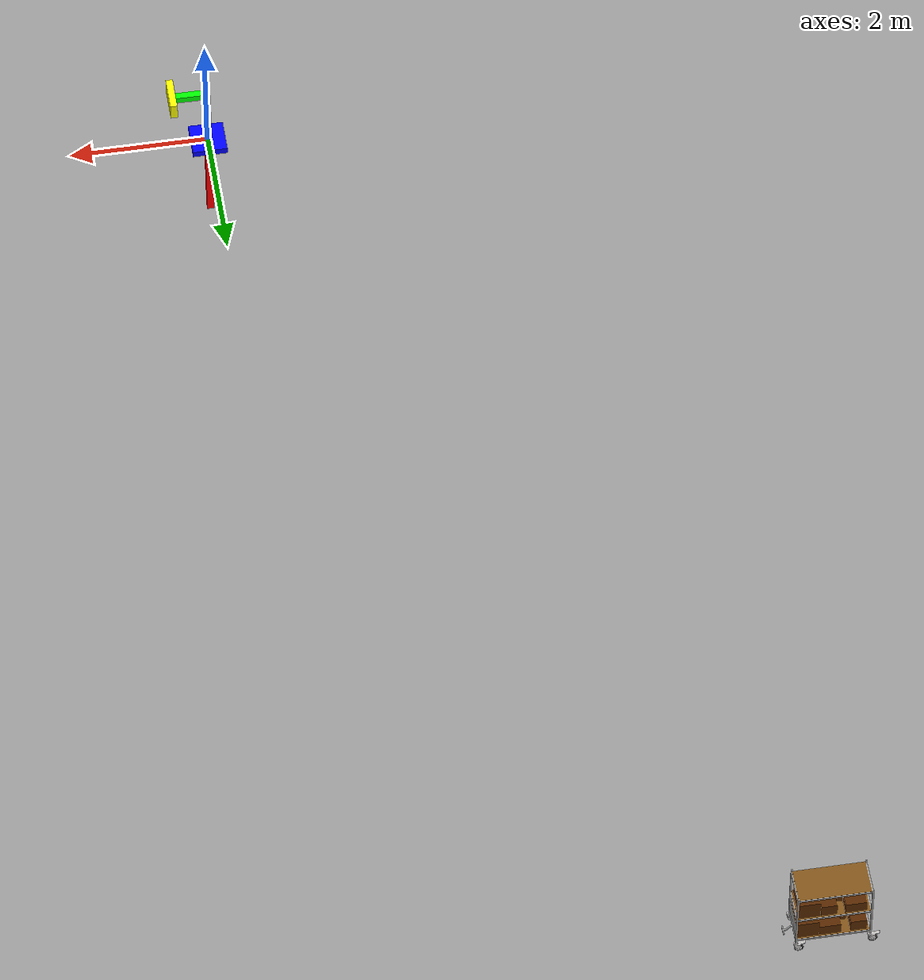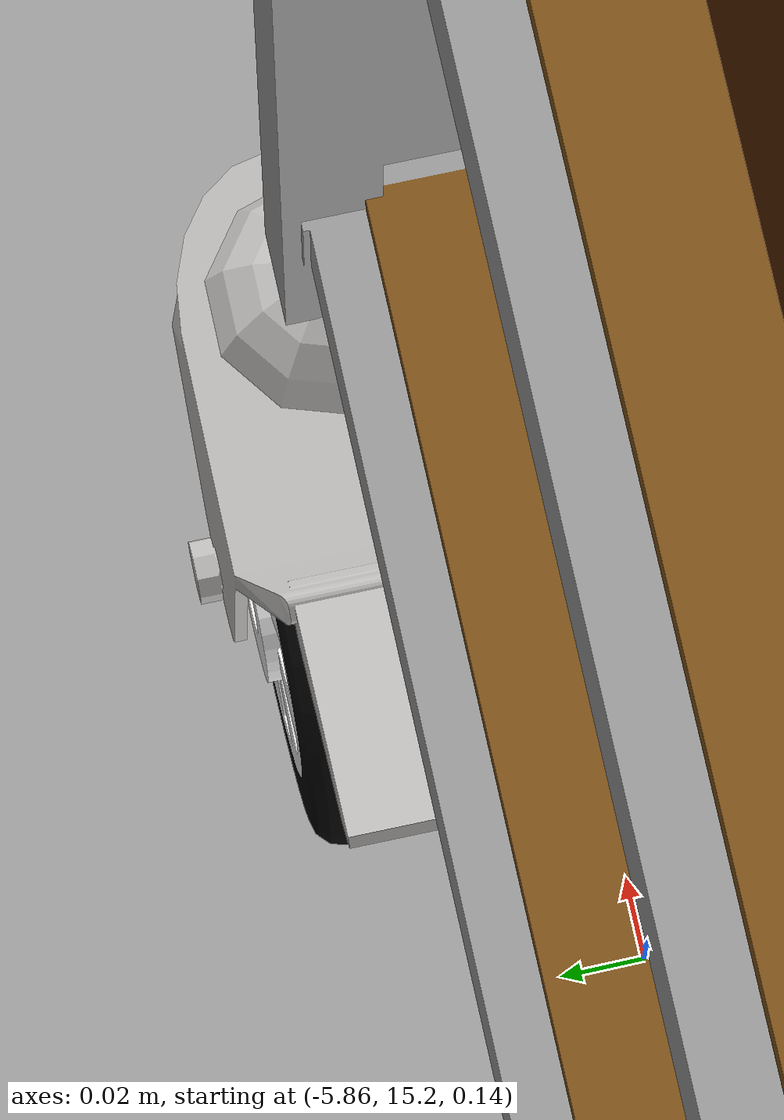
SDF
<sdf version="1.7">
 <world name="world_demo">
  <gravity>0 0 -9.8</gravity>
  <physics type="ode"><max_step_size>0.01</max_step_size><real_time_factor>1</real_time_factor></physics>
  <plugin name="ignition::gazebo::systems::Physics" filename="libignition-gazebo-physics-system.so"/>
  <plugin name="ignition::gazebo::systems::UserCommands" filename="libignition-gazebo-user-commands-system.so"/>
  <plugin name="ignition::gazebo::systems::SceneBroadcaster" filename="libignition-gazebo-scene-broadcaster-system.so"/>
  <plugin name="ignition::gazebo::systems::Imu" filename="ignition-gazebo-imu-system"/>
  <plugin name="ignition::gazebo::systems::Sensors" filename="ignition-gazebo-sensors-system">
   <render_engine>ogre2</render_engine>
  </plugin>
  <scene>
   <ambient>1 1 1 1</ambient>
   <background>0.3 0.7 0.9 1</background>
   <shadows>0</shadows>
   <grid>false</grid>
  </scene>
  <light type="directional" name="sun">
   <cast_shadows>0</cast_shadows>
   <pose>-5 -3 10 0 0 0</pose>
   <diffuse>1 1 1 1</diffuse>
   <specular>1 1 1 1</specular>
   <direction>0 0 -1</direction>
  </light>
  <model name="ground_plane">
   <static>true</static>
   <link name="link">
    <collision name="collision">
     <geometry><plane><normal>0.0 0.0 1</normal><size>1 1</size></plane></geometry>
    </collision>
   </link>
  </model>
  <include>
   <uri>https://fuel.ignitionrobotics.org/1.0/MovAi/models/cart_model_2</uri>
   <name>cart1</name>
   <pose>-5.73 15 0.25 0 -0 0</pose>
  </include>
  <include><name>Observer</name><uri>file://observer.sdf</uri></include>
 </world>
</sdf>

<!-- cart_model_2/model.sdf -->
<sdf version="1.7">
    <model name="cart_model2">
        <pose>0 0 0 0 0 0</pose>
        <!-- BASE_LINK FRAME -->
        <link name="base_link">
            <pose>0 0 0 0 0 -1.57079632679</pose>
            <inertial>
                <pose>0 -0.5 0.5 0 0 0</pose>
                <mass>30</mass>
                <inertia>
                    <ixx>0.1</ixx>
                    <ixy>0</ixy>
                    <ixz>0</ixz>
                    <iyy>0.1</iyy>
                    <iyz>0</iyz>
                    <izz>0.1</izz>
                </inertia>
            </inertial>
            <collision name="base_link_collision">
                <pose>0 0 0 0 0 0</pose>
                <geometry>
                    <mesh>
                        <scale>1 1 1</scale>
                        <uri>meshes/cart_base_collision.stl</uri>
                    </mesh>
                </geometry>
                <max_contacts>5</max_contacts>
                <surface>
                    <contact>
                        <ode>
                            <soft_cfm>1.0</soft_cfm>
                            <soft_erp>0.4</soft_erp>
                            <kp>1000000.0</kp>
                            <kd>1</kd>
                            <min_depth>0.01</min_depth>
                        </ode>
                    </contact>
                    <friction>
                        <ode>
                            <mu>1.16</mu>
                            <mu2>1.16</mu2>
                        </ode>
                    </friction>
                </surface>
            </collision>
            <visual name="base_link_visual">
                <pose>0 0 0 0 0 0</pose>
                <geometry>
                    <mesh>
                        <scale>1 1 1</scale>
                        <uri>meshes/cart_base.dae</uri>
                        <submesh>
                            <name>base_metal</name>
                            <center>false</center>
                        </submesh>
                    </mesh>
                </geometry>
            </visual>
            <visual name="base_shelf_visual">
                <pose>0 0 0 0 0 0</pose>
                <geometry>
                    <mesh>
                        <scale>1 1 1</scale>
                        <uri>meshes/cart_base.dae</uri>
                        <submesh>
                            <name>base_shelf</name>
                            <center>false</center>
                        </submesh>
                    </mesh>
                </geometry>
            </visual>
            <visual name="back_left_sup_visual">
                <pose>-0.245 -1.005 0.05 0 0 0</pose>
                <geometry>
                    <mesh>
                        <scale>1 1 1</scale>
                        <uri>meshes/sup_wheels.dae</uri>
                    </mesh>
                </geometry>
            </visual>
            <visual name="back_right_sup_visual">
                <pose>0.245 -1.005 0.05 0 0 0</pose>
                <geometry>
                    <mesh>
                        <scale>1 1 1</scale>
                        <uri>meshes/sup_wheels.dae</uri>
                    </mesh>
                </geometry>
            </visual>
            <visual name="tag_visual">
                <pose>0 0 0 0 0 0</pose>
                <geometry>
                    <mesh>
                        <scale>1 1 1</scale>
                        <uri>meshes/cart_base.dae</uri>
                        <submesh>
                            <name>tag</name>
                            <center>false</center>
                        </submesh>
                    </mesh>
                </geometry>
                <material>
                    <diffuse>1.0 1.0 1.0</diffuse>
                    <specular>1.0 1.0 1.0</specular>
                    <pbr>
                        <metal>
                            <albedo_map>meshes/cart_tag.png</albedo_map>
                        </metal>
                    </pbr>
                </material>
            </visual>
        </link>
        <!-- Wheels -->
        <!-- Back Left -->
        <link name="back_left">
            <pose>-1.04 -0.245 -0.05 0 0 1.570796327</pose>
            <inertial>
                <pose>0 0 0 0 1.570796327 0</pose>
                <mass>0.01</mass>
                <inertia>
                    <ixx>0.0000175</ixx>
                    <ixy>0</ixy>
                    <ixz>0</ixz>
                    <iyy>0.0000175</iyy>
                    <iyz>0</iyz>
                    <izz>0.00003125</izz>
                </inertia>
            </inertial>
            <collision name="back_left_collision">
                <pose>0 0 0 0 1.570796327 0</pose>
                <geometry>
                    <cylinder>
                        <length>0.03</length>
                        <radius>0.06</radius>
                    </cylinder>
                </geometry>
                <max_contacts>5</max_contacts>
                <surface>
                    <contact>
                        <ode>
                            <soft_cfm>1.0</soft_cfm>
                            <soft_erp>0.4</soft_erp>
                            <kp>1000000.0</kp>
                            <kd>1</kd>
                            <min_depth>0.01</min_depth>
                        </ode>
                    </contact>
                    <friction>
                        <ode>
                            <mu>1.16</mu>
                            <mu2>1.16</mu2>
                        </ode>
                    </friction>
                </surface>
            </collision>
            <visual name="back_left_visual">
                <pose>0 0 0 0 0 0</pose>
                <geometry>
                    <mesh>
                        <scale>1 1 1</scale>
                        <uri>meshes/wheel.dae</uri>
                    </mesh>
                </geometry>
            </visual>
        </link>
        <joint name="back_left_joint" type="revolute">
            <child>back_left</child>
            <parent>base_link</parent>
            <axis>
                <xyz>1 0 0</xyz>
                <dynamics>
                    <friction>0.5</friction>
                    <damping>0.0001</damping>
                </dynamics>
            </axis>
        </joint>
        <!-- Back Right -->
        <link name="back_right">
            <pose>-1.04 0.245 -0.05 0 0 1.570796327</pose>
            <inertial>
                <pose>0 0 0 0 1.570796327 0</pose>
                <mass>0.01</mass>
                <inertia>
                    <ixx>0.0000175</ixx>
                    <ixy>0</ixy>
                    <ixz>0</ixz>
                    <iyy>0.0000175</iyy>
                    <iyz>0</iyz>
                    <izz>0.00003125</izz>
                </inertia>
            </inertial>
            <collision name="back_right_collision">
                <pose>0 0 0 0 1.570796327 0</pose>
                <geometry>
                    <cylinder>
                        <length>0.03</length>
                        <radius>0.06</radius>
                    </cylinder>
                </geometry>
                <max_contacts>5</max_contacts>
                <surface>
                    <contact>
                        <ode>
                            <soft_cfm>1.0</soft_cfm>
                            <soft_erp>0.4</soft_erp>
                            <kp>1000000.0</kp>
                            <kd>1</kd>
                            <min_depth>0.01</min_depth>
                        </ode>
                    </contact>
                    <friction>
                        <ode>
                            <mu>1.16</mu>
                            <mu2>1.16</mu2>
                        </ode>
                    </friction>
                </surface>
            </collision>
            <visual name="back_right_visual">
                <pose>0 0 0 0 0 0</pose>
                <geometry>
                    <mesh>
                        <scale>1 1 1</scale>
                        <uri>meshes/wheel.dae</uri>
                    </mesh>
                </geometry>
            </visual>
        </link>
        <joint name="back_right_joint" type="revolute">
            <child>back_right</child>
            <parent>base_link</parent>
            <axis>
                <xyz>1 0 0</xyz>
                <dynamics>
                    <friction>0.5</friction>
                    <damping>0.0001</damping>
                </dynamics>
            </axis>
        </joint>
        <!-- Front Left -->
        <link name="wheel_sup_front_left">
            <pose>0 -0.245 0.05 0 0 1.570796327</pose>
            <inertial>
                <pose>0 0 0 0 0 0</pose>
                <mass>0.01</mass>
                <inertia>
                    <ixx>0.0000175</ixx>
                    <ixy>0</ixy>
                    <ixz>0</ixz>
                    <iyy>0.0000175</iyy>
                    <iyz>0</iyz>
                    <izz>0.0000175</izz>
                </inertia>
            </inertial>
            <visual name="wheel_sup_front_left_visual">
                <pose>0 0 0 0 0 3.14159265359</pose>
                <geometry>
                    <mesh>
                        <scale>1 1 1</scale>
                        <uri>meshes/sup_wheels.dae</uri>
                    </mesh>
                </geometry>
            </visual>
        </link>
        <joint name="wheel_sup_front_left_joint" type="revolute">
            <child>wheel_sup_front_left</child>
            <parent>base_link</parent>
            <axis>
                <xyz>0 0 1</xyz>
                <dynamics>
                    <damping>0.001</damping>
                </dynamics>
            </axis>
        </joint>
        <link name="front_left">
            <pose>-0.04 -0.245 -0.05 0 0 1.570796327</pose>
            <inertial>
                <pose>0 0 0 0 1.570796327 0</pose>
                <mass>0.01</mass>
                <inertia>
                    <ixx>0.0000175</ixx>
                    <ixy>0</ixy>
                    <ixz>0</ixz>
                    <iyy>0.0000175</iyy>
                    <iyz>0</iyz>
                    <izz>0.00003125</izz>
                </inertia>
            </inertial>
            <collision name="front_left_collision">
                <pose>0 0 0 0 1.570796327 0</pose>
                <geometry>
                    <cylinder>
                        <length>0.03</length>
                        <radius>0.06</radius>
                    </cylinder>
                </geometry>
                <max_contacts>5</max_contacts>
                <surface>
                    <contact>
                        <ode>
                            <soft_cfm>1.0</soft_cfm>
                            <soft_erp>0.4</soft_erp>
                            <kp>1000000.0</kp>
                            <kd>1</kd>
                            <min_depth>0.01</min_depth>
                        </ode>
                    </contact>
                    <friction>
                        <ode>
                            <mu>1.16</mu>
                            <mu2>1.16</mu2>
                        </ode>
                    </friction>
                </surface>
            </collision>
            <visual name="front_left_visual">
                <pose>0 0 0 0 0 0</pose>
                <geometry>
                    <mesh>
                        <scale>1 1 1</scale>
                        <uri>meshes/wheel.dae</uri>
                    </mesh>
                </geometry>
            </visual>
        </link>
        <joint name="front_left_joint" type="revolute">
            <child>front_left</child>
            <parent>wheel_sup_front_left</parent>
            <axis>
                <xyz>1 0 0</xyz>
                <dynamics>
                    <friction>0.5</friction>
                    <damping>0.0001</damping>
                </dynamics>
            </axis>
        </joint>
        <!-- Front Right -->
        <link name="wheel_sup_front_right">
            <pose>0 0.245 0.05 0 0 1.570796327</pose>
            <inertial>
                <pose>0 0 0 0 0 0</pose>
                <mass>0.01</mass>
                <inertia>
                    <ixx>0.0000175</ixx>
                    <ixy>0</ixy>
                    <ixz>0</ixz>
                    <iyy>0.0000175</iyy>
                    <iyz>0</iyz>
                    <izz>0.0000175</izz>
                </inertia>
            </inertial>
            <visual name="wheel_sup_front_right_visual">
                <pose>0 0 0 0 0 3.14159265359</pose>
                <geometry>
                    <mesh>
                        <scale>1 1 1</scale>
                        <uri>meshes/sup_wheels.dae</uri>
                    </mesh>
                </geometry>
            </visual>
        </link>
        <joint name="wheel_sup_front_right_joint" type="revolute">
            <child>wheel_sup_front_right</child>
            <parent>base_link</parent>
            <axis>
                <xyz>0 0 1</xyz>
                <dynamics>
                    <damping>0.001</damping>
                </dynamics>
            </axis>
        </joint>
        <link name="front_right">
            <pose>-0.04 0.245 -0.05 0 0 1.570796327</pose>
            <inertial>
                <pose>0 0 0 0 1.570796327 0</pose>
                <mass>0.01</mass>
                <inertia>
                    <ixx>0.0000175</ixx>
                    <ixy>0</ixy>
                    <ixz>0</ixz>
                    <iyy>0.0000175</iyy>
                    <iyz>0</iyz>
                    <izz>0.00003125</izz>
                </inertia>
            </inertial>
            <collision name="front_right_collision">
                <pose>0 0 0 0 1.570796327 0</pose>
                <geometry>
                    <cylinder>
                        <length>0.03</length>
                        <radius>0.06</radius>
                    </cylinder>
                </geometry>
                <max_contacts>5</max_contacts>
                <surface>
                    <contact>
                        <ode>
                            <soft_cfm>1.0</soft_cfm>
                            <soft_erp>0.4</soft_erp>
                            <kp>1000000.0</kp>
                            <kd>1</kd>
                            <min_depth>0.01</min_depth>
                        </ode>
                    </contact>
                    <friction>
                        <ode>
                            <mu>1.16</mu>
                            <mu2>1.16</mu2>
                        </ode>
                    </friction>
                </surface>
            </collision>
            <visual name="front_right_visual">
                <pose>0 0 0 0 0 0</pose>
                <geometry>
                    <mesh>
                        <scale>1 1 1</scale>
                        <uri>meshes/wheel.dae</uri>
                    </mesh>
                </geometry>
            </visual>
        </link>
        <joint name="front_right_joint" type="revolute">
            <child>front_right</child>
            <parent>wheel_sup_front_right</parent>
            <axis>
                <xyz>1 0 0</xyz>
                <dynamics>
                    <friction>0.5</friction>
                    <damping>0.0001</damping>
                </dynamics>
            </axis>
        </joint>
    </model>
</sdf>

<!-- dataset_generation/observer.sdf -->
<sdf version='1.11'>
<model name='observer'>
    <pose>0 0 0 0 0 0</pose>

    <!-- Link for the base of the observer. The observer base is jointed to the world with two prismatic joints allowing XY motion -->
    <link name='observer_link'>
        <inertial>
            <mass>1</mass>
            <pose>0 0 0 0 0 0</pose>
        </inertial>
        <visual name='observer_base_visual'>
            <geometry>
                <box>
                    <size>0.5 0.5 0.1</size>
                </box>
            </geometry>
            <material>
                <ambient>0 0 1 1</ambient>
                <diffuse>0 0 1 1</diffuse>
                <specular>1 1 1 1</specular>
            </material>
        </visual>
        <pose>0 0 0 0 0 0</pose>
    </link>
    <link name="x_slider_link" />
    <link name="z_rotator_link" />
    <joint name="world_x_slider" type="prismatic">
        <parent>world</parent>
        <child>x_slider_link</child>
        <axis>
            <xyz>1 0 0</xyz>
            <dynamics>
                <damping>3.0</damping>
                <friction>0.1</friction>
            </dynamics>
        </axis>
    </joint>
    <joint name="world_y_slider" type="prismatic">
        <parent>x_slider_link</parent>
        <child>z_rotator_link</child>
        <axis>
            <xyz>0 1 0</xyz>
            <dynamics>
                <damping>3.0</damping>
                <friction>0.1</friction>
            </dynamics>
        </axis>
    </joint>
    <joint name="z_rotator" type="revolute">
        <parent>z_rotator_link</parent>
        <child>observer_link</child>
        <axis>
            <xyz>0 0 1</xyz>
            <dynamics>
                <damping>3.0</damping>
                <friction>0.1</friction>
            </dynamics>
        </axis>
    </joint>

    <!-- The Z slider moves the base_link up and down -->
    <link name='z_slider_link'>
        <gravity>false</gravity>
        <visual name='z_slider_visual'>
            <geometry>
                <box>
                    <size>0.1 0.1 2.5</size>
                </box>
            </geometry>
            <material>
                <ambient>1 0 0 1</ambient>
                <diffuse>1 0 0 1</diffuse>
                <specular>1 1 1 1</specular>
            </material>
        </visual>
        <pose>0 0 -0.25 0 0 0</pose>
    </link>
    <joint name="z_slider_joint" type="prismatic">
        <parent>observer_link</parent>
        <child>z_slider_link</child>
        <axis>
            <xyz>0 0 1</xyz>
            <limit>
                <lower>-1</lower>
                <upper>2.5</upper>
            </limit>
            <dynamics>
                <damping>10.0</damping>
                <friction>0.1</friction>
            </dynamics>
        </axis>
    </joint>

    <!-- The z_boom link extends forward from the top of the z_slider,
        this makes it more difficult to do pure rotations, which SLAM systems can struggle with. -->
    <link name='z_boom_link'>
        <gravity>false</gravity>
        <visual name='z_boom_visual'>
            <geometry>
                <box>
                    <size>0.5 0.1 0.1</size>
                </box>
            </geometry>
            <material>
                <ambient>0 1 0 1</ambient>
                <diffuse>0 1 0 1</diffuse>
                <specular>1 1 1 1</specular>
            </material>
        </visual>
        <pose>0.25 0 1 0 0 0</pose>
    </link>
    <joint name="z_boom_joint" type="fixed">
        <parent>z_slider_link</parent>
        <child>z_boom_link</child>
    </joint>

    <!-- The base link is where all data is collected. It contains the IMU, 3 cameras (stereo and segmentation), and is where ground truth is recorded. -->
    <link name="base_link">
        <gravity>false</gravity>
        <visual name='base_visual'>
            <geometry>
                <box>
                    <size>0.1 0.5 0.25</size>
                </box>
            </geometry>
            <material>
                <ambient>1 1 0 1</ambient>
                <diffuse>1 1 0 1</diffuse>
                <specular>1 1 1 1</specular>
            </material>
        </visual>
        <pose>0.5 0 1 0 0 0</pose>
        <sensor name='observer_camera' type='camera'>
            <topic>observer/left</topic>
            <camera>
            <camera_info_topic>observer/left_info</camera_info_topic>

                <horizontal_fov>1.047</horizontal_fov>
                <image>
                    <width>1280</width>
                    <height>800</height>
                </image>
                <clip>
                    <near>0.1</near>
                    <far>100</far>
                </clip>
            </camera>
            <always_on>1</always_on>
            <update_rate>30</update_rate>
            <visualize>true</visualize>
            <pose>0 -0.0375 0 0 0 0</pose>
        </sensor>
        <sensor name='observer_camera_right' type='camera'>
            <topic>observer/right</topic>
            <camera>
                <horizontal_fov>0.6</horizontal_fov>
                <image>
                    <width>1280</width>
                    <height>800</height>
                </image>
                <clip>
                    <near>0.1</near>
                    <far>100</far>
                </clip>
            </camera>
            <always_on>1</always_on>
            <update_rate>30</update_rate>
            <visualize>true</visualize>
            <pose>0 0.0375 0 0 0 0</pose>
        </sensor>
        <sensor name="observer_imu_sensor" type="imu">
            <always_on>1</always_on>
            <update_rate>200</update_rate>
            <visualize>false</visualize>
            <topic>observer/imu</topic>
        </sensor>
    </link>
    <joint name="base_joint" type="fixed">
        <parent>z_boom_link</parent>
        <child>base_link</child>
    </joint>

    <static>false</static>
    <self_collide>false</self_collide>
    <plugin name='dataset_generation::VelocityController' filename='VelocityController' />

</model>
</sdf>
